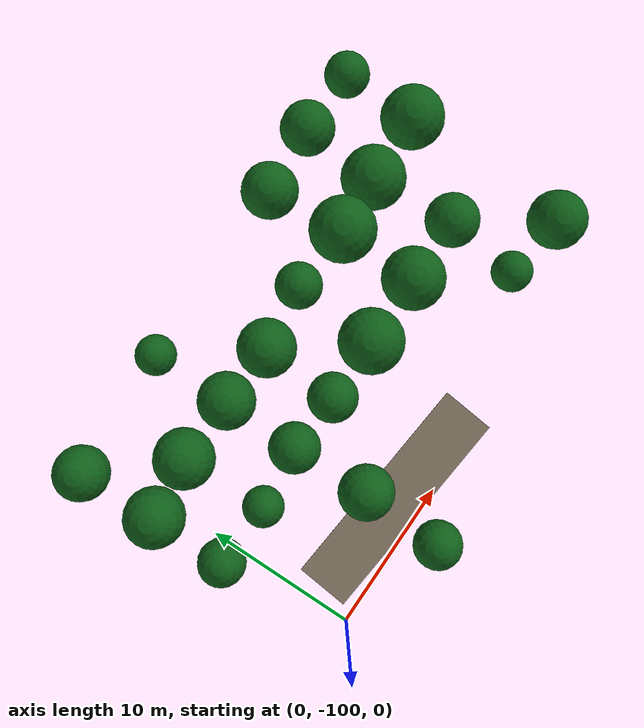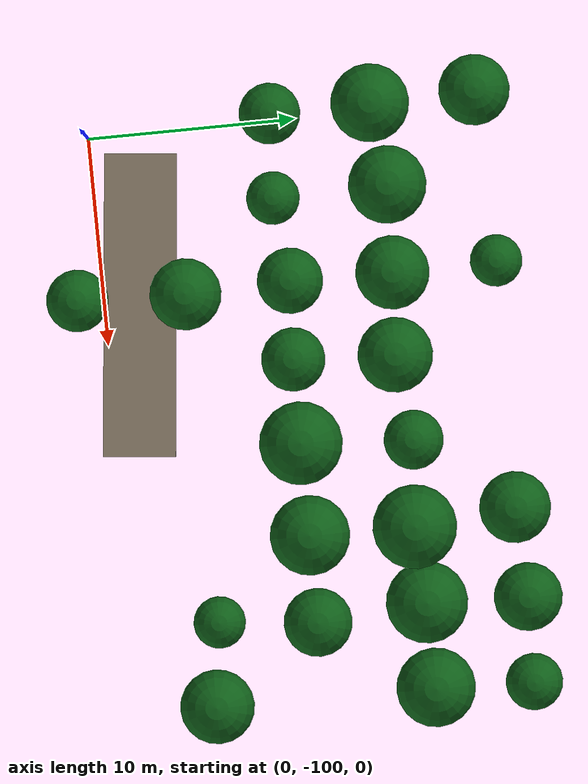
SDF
<sdf version="1.9">
 <world name="cheongsong_orchard">
  <model name="road_4">
   <static>true</static>
   <pose>8.2 -98.3 0.02 0 0 -0.1019</pose>
   <link name="link">
    <collision name="collision">
     <geometry><box><size>14.6 3.5 0.04</size></box></geometry>
     <surface><friction><ode><mu>0.9</mu><mu2>0.9</mu2></ode></friction></surface>
    </collision>
    <visual name="visual">
     <geometry><box><size>14.6 3.5 0.04</size></box></geometry>
     <material><ambient>0.4 0.35 0.28 1</ambient><diffuse>0.5 0.45 0.38 1</diffuse></material>
    </visual>
   </link>
  </model>
  <model name="apple_tree_185">
   <static>true</static>
   <pose>7.79 -101.11 0 0 0 0</pose>
   <link name="link">
    <collision name="trunk_col">
     <pose>0 0 1.36 0 0 0</pose>
     <geometry><cylinder><radius>0.121</radius><length>2.73</length></cylinder></geometry>
    </collision>
    <visual name="trunk_vis">
     <pose>0 0 1.36 0 0 0</pose>
     <geometry><cylinder><radius>0.121</radius><length>2.73</length></cylinder></geometry>
     <material><ambient>0.35 0.22 0.08 1</ambient><diffuse>0.45 0.30 0.12 1</diffuse></material>
    </visual>
    <collision name="canopy_col">
     <pose>0 0 4.21 0 0 0</pose>
     <geometry><sphere><radius>1.48</radius></sphere></geometry>
    </collision>
    <visual name="canopy_vis">
     <pose>0 0 4.21 0 0 0</pose>
     <geometry><sphere><radius>1.48</radius></sphere></geometry>
     <material><ambient>0.04 0.28 0.06 1</ambient><diffuse>0.06 0.38 0.10 1</diffuse></material>
    </visual>
   </link>
  </model>
  <model name="apple_tree_236">
   <static>true</static>
   <pose>7.97 -96.00 0 0 0 0</pose>
   <link name="link">
    <collision name="trunk_col">
     <pose>0 0 1.01 0 0 0</pose>
     <geometry><cylinder><radius>0.148</radius><length>2.02</length></cylinder></geometry>
    </collision>
    <visual name="trunk_vis">
     <pose>0 0 1.01 0 0 0</pose>
     <geometry><cylinder><radius>0.148</radius><length>2.02</length></cylinder></geometry>
     <material><ambient>0.35 0.22 0.08 1</ambient><diffuse>0.45 0.30 0.12 1</diffuse></material>
    </visual>
    <collision name="canopy_col">
     <pose>0 0 3.74 0 0 0</pose>
     <geometry><sphere><radius>1.71</radius></sphere></geometry>
    </collision>
    <visual name="canopy_vis">
     <pose>0 0 3.74 0 0 0</pose>
     <geometry><sphere><radius>1.71</radius></sphere></geometry>
     <material><ambient>0.04 0.28 0.06 1</ambient><diffuse>0.06 0.38 0.10 1</diffuse></material>
    </visual>
   </link>
  </model>
  <model name="apple_tree_237">
   <static>true</static>
   <pose>23.62 -95.91 0 0 0 0</pose>
   <link name="link">
    <collision name="trunk_col">
     <pose>0 0 1.19 0 0 0</pose>
     <geometry><cylinder><radius>0.144</radius><length>2.37</length></cylinder></geometry>
    </collision>
    <visual name="trunk_vis">
     <pose>0 0 1.19 0 0 0</pose>
     <geometry><cylinder><radius>0.144</radius><length>2.37</length></cylinder></geometry>
     <material><ambient>0.35 0.22 0.08 1</ambient><diffuse>0.45 0.30 0.12 1</diffuse></material>
    </visual>
    <collision name="canopy_col">
     <pose>0 0 3.62 0 0 0</pose>
     <geometry><sphere><radius>1.24</radius></sphere></geometry>
    </collision>
    <visual name="canopy_vis">
     <pose>0 0 3.62 0 0 0</pose>
     <geometry><sphere><radius>1.24</radius></sphere></geometry>
     <material><ambient>0.04 0.28 0.06 1</ambient><diffuse>0.06 0.38 0.10 1</diffuse></material>
    </visual>
   </link>
  </model>
  <model name="apple_tree_238">
   <static>true</static>
   <pose>27.58 -96.40 0 0 0 0</pose>
   <link name="link">
    <collision name="trunk_col">
     <pose>0 0 1.06 0 0 0</pose>
     <geometry><cylinder><radius>0.103</radius><length>2.11</length></cylinder></geometry>
    </collision>
    <visual name="trunk_vis">
     <pose>0 0 1.06 0 0 0</pose>
     <geometry><cylinder><radius>0.103</radius><length>2.11</length></cylinder></geometry>
     <material><ambient>0.35 0.22 0.08 1</ambient><diffuse>0.45 0.30 0.12 1</diffuse></material>
    </visual>
    <collision name="canopy_col">
     <pose>0 0 3.88 0 0 0</pose>
     <geometry><sphere><radius>1.77</radius></sphere></geometry>
    </collision>
    <visual name="canopy_vis">
     <pose>0 0 3.88 0 0 0</pose>
     <geometry><sphere><radius>1.77</radius></sphere></geometry>
     <material><ambient>0.04 0.28 0.06 1</ambient><diffuse>0.06 0.38 0.10 1</diffuse></material>
    </visual>
   </link>
  </model>
  <model name="apple_tree_287">
   <static>true</static>
   <pose>-0.16 -91.19 0 0 0 0</pose>
   <link name="link">
    <collision name="trunk_col">
     <pose>0 0 1.25 0 0 0</pose>
     <geometry><cylinder><radius>0.090</radius><length>2.51</length></cylinder></geometry>
    </collision>
    <visual name="trunk_vis">
     <pose>0 0 1.25 0 0 0</pose>
     <geometry><cylinder><radius>0.090</radius><length>2.51</length></cylinder></geometry>
     <material><ambient>0.35 0.22 0.08 1</ambient><diffuse>0.45 0.30 0.12 1</diffuse></material>
    </visual>
    <collision name="canopy_col">
     <pose>0 0 3.97 0 0 0</pose>
     <geometry><sphere><radius>1.46</radius></sphere></geometry>
    </collision>
    <visual name="canopy_vis">
     <pose>0 0 3.97 0 0 0</pose>
     <geometry><sphere><radius>1.46</radius></sphere></geometry>
     <material><ambient>0.04 0.28 0.06 1</ambient><diffuse>0.06 0.38 0.10 1</diffuse></material>
    </visual>
   </link>
  </model>
  <model name="apple_tree_288">
   <static>true</static>
   <pose>3.82 -91.42 0 0 0 0</pose>
   <link name="link">
    <collision name="trunk_col">
     <pose>0 0 1.08 0 0 0</pose>
     <geometry><cylinder><radius>0.121</radius><length>2.15</length></cylinder></geometry>
    </collision>
    <visual name="trunk_vis">
     <pose>0 0 1.08 0 0 0</pose>
     <geometry><cylinder><radius>0.121</radius><length>2.15</length></cylinder></geometry>
     <material><ambient>0.35 0.22 0.08 1</ambient><diffuse>0.45 0.30 0.12 1</diffuse></material>
    </visual>
    <collision name="canopy_col">
     <pose>0 0 3.42 0 0 0</pose>
     <geometry><sphere><radius>1.27</radius></sphere></geometry>
    </collision>
    <visual name="canopy_vis">
     <pose>0 0 3.42 0 0 0</pose>
     <geometry><sphere><radius>1.27</radius></sphere></geometry>
     <material><ambient>0.04 0.28 0.06 1</ambient><diffuse>0.06 0.38 0.10 1</diffuse></material>
    </visual>
   </link>
  </model>
  <model name="apple_tree_289">
   <static>true</static>
   <pose>7.82 -91.00 0 0 0 0</pose>
   <link name="link">
    <collision name="trunk_col">
     <pose>0 0 1.20 0 0 0</pose>
     <geometry><cylinder><radius>0.116</radius><length>2.39</length></cylinder></geometry>
    </collision>
    <visual name="trunk_vis">
     <pose>0 0 1.20 0 0 0</pose>
     <geometry><cylinder><radius>0.116</radius><length>2.39</length></cylinder></geometry>
     <material><ambient>0.35 0.22 0.08 1</ambient><diffuse>0.45 0.30 0.12 1</diffuse></material>
    </visual>
    <collision name="canopy_col">
     <pose>0 0 3.96 0 0 0</pose>
     <geometry><sphere><radius>1.57</radius></sphere></geometry>
    </collision>
    <visual name="canopy_vis">
     <pose>0 0 3.96 0 0 0</pose>
     <geometry><sphere><radius>1.57</radius></sphere></geometry>
     <material><ambient>0.04 0.28 0.06 1</ambient><diffuse>0.06 0.38 0.10 1</diffuse></material>
    </visual>
   </link>
  </model>
  <model name="apple_tree_290">
   <static>true</static>
   <pose>11.55 -91.21 0 0 0 0</pose>
   <link name="link">
    <collision name="trunk_col">
     <pose>0 0 1.37 0 0 0</pose>
     <geometry><cylinder><radius>0.131</radius><length>2.74</length></cylinder></geometry>
    </collision>
    <visual name="trunk_vis">
     <pose>0 0 1.37 0 0 0</pose>
     <geometry><cylinder><radius>0.131</radius><length>2.74</length></cylinder></geometry>
     <material><ambient>0.35 0.22 0.08 1</ambient><diffuse>0.45 0.30 0.12 1</diffuse></material>
    </visual>
    <collision name="canopy_col">
     <pose>0 0 4.25 0 0 0</pose>
     <geometry><sphere><radius>1.52</radius></sphere></geometry>
    </collision>
    <visual name="canopy_vis">
     <pose>0 0 4.25 0 0 0</pose>
     <geometry><sphere><radius>1.52</radius></sphere></geometry>
     <material><ambient>0.04 0.28 0.06 1</ambient><diffuse>0.06 0.38 0.10 1</diffuse></material>
    </visual>
   </link>
  </model>
  <model name="apple_tree_291">
   <static>true</static>
   <pose>15.53 -91.24 0 0 0 0</pose>
   <link name="link">
    <collision name="trunk_col">
     <pose>0 0 1.35 0 0 0</pose>
     <geometry><cylinder><radius>0.134</radius><length>2.70</length></cylinder></geometry>
    </collision>
    <visual name="trunk_vis">
     <pose>0 0 1.35 0 0 0</pose>
     <geometry><cylinder><radius>0.134</radius><length>2.70</length></cylinder></geometry>
     <material><ambient>0.35 0.22 0.08 1</ambient><diffuse>0.45 0.30 0.12 1</diffuse></material>
    </visual>
    <collision name="canopy_col">
     <pose>0 0 4.68 0 0 0</pose>
     <geometry><sphere><radius>1.98</radius></sphere></geometry>
    </collision>
    <visual name="canopy_vis">
     <pose>0 0 4.68 0 0 0</pose>
     <geometry><sphere><radius>1.98</radius></sphere></geometry>
     <material><ambient>0.04 0.28 0.06 1</ambient><diffuse>0.06 0.38 0.10 1</diffuse></material>
    </visual>
   </link>
  </model>
  <model name="apple_tree_292">
   <static>true</static>
   <pose>19.90 -91.24 0 0 0 0</pose>
   <link name="link">
    <collision name="trunk_col">
     <pose>0 0 1.46 0 0 0</pose>
     <geometry><cylinder><radius>0.107</radius><length>2.92</length></cylinder></geometry>
    </collision>
    <visual name="trunk_vis">
     <pose>0 0 1.46 0 0 0</pose>
     <geometry><cylinder><radius>0.107</radius><length>2.92</length></cylinder></geometry>
     <material><ambient>0.35 0.22 0.08 1</ambient><diffuse>0.45 0.30 0.12 1</diffuse></material>
    </visual>
    <collision name="canopy_col">
     <pose>0 0 4.81 0 0 0</pose>
     <geometry><sphere><radius>1.90</radius></sphere></geometry>
    </collision>
    <visual name="canopy_vis">
     <pose>0 0 4.81 0 0 0</pose>
     <geometry><sphere><radius>1.90</radius></sphere></geometry>
     <material><ambient>0.04 0.28 0.06 1</ambient><diffuse>0.06 0.38 0.10 1</diffuse></material>
    </visual>
   </link>
  </model>
  <model name="apple_tree_293">
   <static>true</static>
   <pose>24.05 -91.26 0 0 0 0</pose>
   <link name="link">
    <collision name="trunk_col">
     <pose>0 0 1.31 0 0 0</pose>
     <geometry><cylinder><radius>0.126</radius><length>2.62</length></cylinder></geometry>
    </collision>
    <visual name="trunk_vis">
     <pose>0 0 1.31 0 0 0</pose>
     <geometry><cylinder><radius>0.126</radius><length>2.62</length></cylinder></geometry>
     <material><ambient>0.35 0.22 0.08 1</ambient><diffuse>0.45 0.30 0.12 1</diffuse></material>
    </visual>
    <collision name="canopy_col">
     <pose>0 0 4.25 0 0 0</pose>
     <geometry><sphere><radius>1.63</radius></sphere></geometry>
    </collision>
    <visual name="canopy_vis">
     <pose>0 0 4.25 0 0 0</pose>
     <geometry><sphere><radius>1.63</radius></sphere></geometry>
     <material><ambient>0.04 0.28 0.06 1</ambient><diffuse>0.06 0.38 0.10 1</diffuse></material>
    </visual>
   </link>
  </model>
  <model name="apple_tree_342">
   <static>true</static>
   <pose>-0.21 -86.41 0 0 0 0</pose>
   <link name="link">
    <collision name="trunk_col">
     <pose>0 0 0.98 0 0 0</pose>
     <geometry><cylinder><radius>0.108</radius><length>1.96</length></cylinder></geometry>
    </collision>
    <visual name="trunk_vis">
     <pose>0 0 0.98 0 0 0</pose>
     <geometry><cylinder><radius>0.108</radius><length>1.96</length></cylinder></geometry>
     <material><ambient>0.35 0.22 0.08 1</ambient><diffuse>0.45 0.30 0.12 1</diffuse></material>
    </visual>
    <collision name="canopy_col">
     <pose>0 0 3.83 0 0 0</pose>
     <geometry><sphere><radius>1.87</radius></sphere></geometry>
    </collision>
    <visual name="canopy_vis">
     <pose>0 0 3.83 0 0 0</pose>
     <geometry><sphere><radius>1.87</radius></sphere></geometry>
     <material><ambient>0.04 0.28 0.06 1</ambient><diffuse>0.06 0.38 0.10 1</diffuse></material>
    </visual>
   </link>
  </model>
  <model name="apple_tree_343">
   <static>true</static>
   <pose>3.74 -85.97 0 0 0 0</pose>
   <link name="link">
    <collision name="trunk_col">
     <pose>0 0 1.19 0 0 0</pose>
     <geometry><cylinder><radius>0.110</radius><length>2.38</length></cylinder></geometry>
    </collision>
    <visual name="trunk_vis">
     <pose>0 0 1.19 0 0 0</pose>
     <geometry><cylinder><radius>0.110</radius><length>2.38</length></cylinder></geometry>
     <material><ambient>0.35 0.22 0.08 1</ambient><diffuse>0.45 0.30 0.12 1</diffuse></material>
    </visual>
    <collision name="canopy_col">
     <pose>0 0 4.24 0 0 0</pose>
     <geometry><sphere><radius>1.86</radius></sphere></geometry>
    </collision>
    <visual name="canopy_vis">
     <pose>0 0 4.24 0 0 0</pose>
     <geometry><sphere><radius>1.86</radius></sphere></geometry>
     <material><ambient>0.04 0.28 0.06 1</ambient><diffuse>0.06 0.38 0.10 1</diffuse></material>
    </visual>
   </link>
  </model>
  <model name="apple_tree_344">
   <static>true</static>
   <pose>7.90 -86.13 0 0 0 0</pose>
   <link name="link">
    <collision name="trunk_col">
     <pose>0 0 1.12 0 0 0</pose>
     <geometry><cylinder><radius>0.122</radius><length>2.24</length></cylinder></geometry>
    </collision>
    <visual name="trunk_vis">
     <pose>0 0 1.12 0 0 0</pose>
     <geometry><cylinder><radius>0.122</radius><length>2.24</length></cylinder></geometry>
     <material><ambient>0.35 0.22 0.08 1</ambient><diffuse>0.45 0.30 0.12 1</diffuse></material>
    </visual>
    <collision name="canopy_col">
     <pose>0 0 4.00 0 0 0</pose>
     <geometry><sphere><radius>1.76</radius></sphere></geometry>
    </collision>
    <visual name="canopy_vis">
     <pose>0 0 4.00 0 0 0</pose>
     <geometry><sphere><radius>1.76</radius></sphere></geometry>
     <material><ambient>0.04 0.28 0.06 1</ambient><diffuse>0.06 0.38 0.10 1</diffuse></material>
    </visual>
   </link>
  </model>
  <model name="apple_tree_345">
   <static>true</static>
   <pose>11.80 -86.38 0 0 0 0</pose>
   <link name="link">
    <collision name="trunk_col">
     <pose>0 0 1.17 0 0 0</pose>
     <geometry><cylinder><radius>0.102</radius><length>2.34</length></cylinder></geometry>
    </collision>
    <visual name="trunk_vis">
     <pose>0 0 1.17 0 0 0</pose>
     <geometry><cylinder><radius>0.102</radius><length>2.34</length></cylinder></geometry>
     <material><ambient>0.35 0.22 0.08 1</ambient><diffuse>0.45 0.30 0.12 1</diffuse></material>
    </visual>
    <collision name="canopy_col">
     <pose>0 0 4.13 0 0 0</pose>
     <geometry><sphere><radius>1.79</radius></sphere></geometry>
    </collision>
    <visual name="canopy_vis">
     <pose>0 0 4.13 0 0 0</pose>
     <geometry><sphere><radius>1.79</radius></sphere></geometry>
     <material><ambient>0.04 0.28 0.06 1</ambient><diffuse>0.06 0.38 0.10 1</diffuse></material>
    </visual>
   </link>
  </model>
  <model name="apple_tree_346">
   <static>true</static>
   <pose>15.89 -85.91 0 0 0 0</pose>
   <link name="link">
    <collision name="trunk_col">
     <pose>0 0 1.36 0 0 0</pose>
     <geometry><cylinder><radius>0.103</radius><length>2.71</length></cylinder></geometry>
    </collision>
    <visual name="trunk_vis">
     <pose>0 0 1.36 0 0 0</pose>
     <geometry><cylinder><radius>0.103</radius><length>2.71</length></cylinder></geometry>
     <material><ambient>0.35 0.22 0.08 1</ambient><diffuse>0.45 0.30 0.12 1</diffuse></material>
    </visual>
    <collision name="canopy_col">
     <pose>0 0 4.14 0 0 0</pose>
     <geometry><sphere><radius>1.42</radius></sphere></geometry>
    </collision>
    <visual name="canopy_vis">
     <pose>0 0 4.14 0 0 0</pose>
     <geometry><sphere><radius>1.42</radius></sphere></geometry>
     <material><ambient>0.04 0.28 0.06 1</ambient><diffuse>0.06 0.38 0.10 1</diffuse></material>
    </visual>
   </link>
  </model>
  <model name="apple_tree_347">
   <static>true</static>
   <pose>19.98 -86.27 0 0 0 0</pose>
   <link name="link">
    <collision name="trunk_col">
     <pose>0 0 1.43 0 0 0</pose>
     <geometry><cylinder><radius>0.094</radius><length>2.86</length></cylinder></geometry>
    </collision>
    <visual name="trunk_vis">
     <pose>0 0 1.43 0 0 0</pose>
     <geometry><cylinder><radius>0.094</radius><length>2.86</length></cylinder></geometry>
     <material><ambient>0.35 0.22 0.08 1</ambient><diffuse>0.45 0.30 0.12 1</diffuse></material>
    </visual>
    <collision name="canopy_col">
     <pose>0 0 4.86 0 0 0</pose>
     <geometry><sphere><radius>2.00</radius></sphere></geometry>
    </collision>
    <visual name="canopy_vis">
     <pose>0 0 4.86 0 0 0</pose>
     <geometry><sphere><radius>2.00</radius></sphere></geometry>
     <material><ambient>0.04 0.28 0.06 1</ambient><diffuse>0.06 0.38 0.10 1</diffuse></material>
    </visual>
   </link>
  </model>
  <model name="apple_tree_348">
   <static>true</static>
   <pose>23.62 -86.03 0 0 0 0</pose>
   <link name="link">
    <collision name="trunk_col">
     <pose>0 0 0.99 0 0 0</pose>
     <geometry><cylinder><radius>0.131</radius><length>1.98</length></cylinder></geometry>
    </collision>
    <visual name="trunk_vis">
     <pose>0 0 0.99 0 0 0</pose>
     <geometry><cylinder><radius>0.131</radius><length>1.98</length></cylinder></geometry>
     <material><ambient>0.35 0.22 0.08 1</ambient><diffuse>0.45 0.30 0.12 1</diffuse></material>
    </visual>
    <collision name="canopy_col">
     <pose>0 0 3.93 0 0 0</pose>
     <geometry><sphere><radius>1.95</radius></sphere></geometry>
    </collision>
    <visual name="canopy_vis">
     <pose>0 0 3.93 0 0 0</pose>
     <geometry><sphere><radius>1.95</radius></sphere></geometry>
     <material><ambient>0.04 0.28 0.06 1</ambient><diffuse>0.06 0.38 0.10 1</diffuse></material>
    </visual>
   </link>
  </model>
  <model name="apple_tree_349">
   <static>true</static>
   <pose>27.64 -86.01 0 0 0 0</pose>
   <link name="link">
    <collision name="trunk_col">
     <pose>0 0 1.38 0 0 0</pose>
     <geometry><cylinder><radius>0.085</radius><length>2.76</length></cylinder></geometry>
    </collision>
    <visual name="trunk_vis">
     <pose>0 0 1.38 0 0 0</pose>
     <geometry><cylinder><radius>0.085</radius><length>2.76</length></cylinder></geometry>
     <material><ambient>0.35 0.22 0.08 1</ambient><diffuse>0.45 0.30 0.12 1</diffuse></material>
    </visual>
    <collision name="canopy_col">
     <pose>0 0 4.64 0 0 0</pose>
     <geometry><sphere><radius>1.88</radius></sphere></geometry>
    </collision>
    <visual name="canopy_vis">
     <pose>0 0 4.64 0 0 0</pose>
     <geometry><sphere><radius>1.88</radius></sphere></geometry>
     <material><ambient>0.04 0.28 0.06 1</ambient><diffuse>0.06 0.38 0.10 1</diffuse></material>
    </visual>
   </link>
  </model>
  <model name="apple_tree_398">
   <static>true</static>
   <pose>-0.32 -81.44 0 0 0 0</pose>
   <link name="link">
    <collision name="trunk_col">
     <pose>0 0 1.24 0 0 0</pose>
     <geometry><cylinder><radius>0.122</radius><length>2.49</length></cylinder></geometry>
    </collision>
    <visual name="trunk_vis">
     <pose>0 0 1.24 0 0 0</pose>
     <geometry><cylinder><radius>0.122</radius><length>2.49</length></cylinder></geometry>
     <material><ambient>0.35 0.22 0.08 1</ambient><diffuse>0.45 0.30 0.12 1</diffuse></material>
    </visual>
    <collision name="canopy_col">
     <pose>0 0 4.18 0 0 0</pose>
     <geometry><sphere><radius>1.69</radius></sphere></geometry>
    </collision>
    <visual name="canopy_vis">
     <pose>0 0 4.18 0 0 0</pose>
     <geometry><sphere><radius>1.69</radius></sphere></geometry>
     <material><ambient>0.04 0.28 0.06 1</ambient><diffuse>0.06 0.38 0.10 1</diffuse></material>
    </visual>
   </link>
  </model>
  <model name="apple_tree_400">
   <static>true</static>
   <pose>7.82 -81.18 0 0 0 0</pose>
   <link name="link">
    <collision name="trunk_col">
     <pose>0 0 1.34 0 0 0</pose>
     <geometry><cylinder><radius>0.101</radius><length>2.68</length></cylinder></geometry>
    </collision>
    <visual name="trunk_vis">
     <pose>0 0 1.34 0 0 0</pose>
     <geometry><cylinder><radius>0.101</radius><length>2.68</length></cylinder></geometry>
     <material><ambient>0.35 0.22 0.08 1</ambient><diffuse>0.45 0.30 0.12 1</diffuse></material>
    </visual>
    <collision name="canopy_col">
     <pose>0 0 3.92 0 0 0</pose>
     <geometry><sphere><radius>1.24</radius></sphere></geometry>
    </collision>
    <visual name="canopy_vis">
     <pose>0 0 3.92 0 0 0</pose>
     <geometry><sphere><radius>1.24</radius></sphere></geometry>
     <material><ambient>0.04 0.28 0.06 1</ambient><diffuse>0.06 0.38 0.10 1</diffuse></material>
    </visual>
   </link>
  </model>
  <model name="apple_tree_403">
   <static>true</static>
   <pose>19.53 -81.45 0 0 0 0</pose>
   <link name="link">
    <collision name="trunk_col">
     <pose>0 0 1.36 0 0 0</pose>
     <geometry><cylinder><radius>0.115</radius><length>2.72</length></cylinder></geometry>
    </collision>
    <visual name="trunk_vis">
     <pose>0 0 1.36 0 0 0</pose>
     <geometry><cylinder><radius>0.115</radius><length>2.72</length></cylinder></geometry>
     <material><ambient>0.35 0.22 0.08 1</ambient><diffuse>0.45 0.30 0.12 1</diffuse></material>
    </visual>
    <collision name="canopy_col">
     <pose>0 0 4.42 0 0 0</pose>
     <geometry><sphere><radius>1.70</radius></sphere></geometry>
    </collision>
    <visual name="canopy_vis">
     <pose>0 0 4.42 0 0 0</pose>
     <geometry><sphere><radius>1.70</radius></sphere></geometry>
     <material><ambient>0.04 0.28 0.06 1</ambient><diffuse>0.06 0.38 0.10 1</diffuse></material>
    </visual>
   </link>
  </model>
  <model name="apple_tree_404">
   <static>true</static>
   <pose>23.81 -81.24 0 0 0 0</pose>
   <link name="link">
    <collision name="trunk_col">
     <pose>0 0 1.32 0 0 0</pose>
     <geometry><cylinder><radius>0.086</radius><length>2.63</length></cylinder></geometry>
    </collision>
    <visual name="trunk_vis">
     <pose>0 0 1.32 0 0 0</pose>
     <geometry><cylinder><radius>0.086</radius><length>2.63</length></cylinder></geometry>
     <material><ambient>0.35 0.22 0.08 1</ambient><diffuse>0.45 0.30 0.12 1</diffuse></material>
    </visual>
    <collision name="canopy_col">
     <pose>0 0 4.26 0 0 0</pose>
     <geometry><sphere><radius>1.63</radius></sphere></geometry>
    </collision>
    <visual name="canopy_vis">
     <pose>0 0 4.26 0 0 0</pose>
     <geometry><sphere><radius>1.63</radius></sphere></geometry>
     <material><ambient>0.04 0.28 0.06 1</ambient><diffuse>0.06 0.38 0.10 1</diffuse></material>
    </visual>
   </link>
  </model>
  <model name="apple_tree_405">
   <static>true</static>
   <pose>27.88 -81.32 0 0 0 0</pose>
   <link name="link">
    <collision name="trunk_col">
     <pose>0 0 1.13 0 0 0</pose>
     <geometry><cylinder><radius>0.116</radius><length>2.25</length></cylinder></geometry>
    </collision>
    <visual name="trunk_vis">
     <pose>0 0 1.13 0 0 0</pose>
     <geometry><cylinder><radius>0.116</radius><length>2.25</length></cylinder></geometry>
     <material><ambient>0.35 0.22 0.08 1</ambient><diffuse>0.45 0.30 0.12 1</diffuse></material>
    </visual>
    <collision name="canopy_col">
     <pose>0 0 3.61 0 0 0</pose>
     <geometry><sphere><radius>1.36</radius></sphere></geometry>
    </collision>
    <visual name="canopy_vis">
     <pose>0 0 3.61 0 0 0</pose>
     <geometry><sphere><radius>1.36</radius></sphere></geometry>
     <material><ambient>0.04 0.28 0.06 1</ambient><diffuse>0.06 0.38 0.10 1</diffuse></material>
    </visual>
   </link>
  </model>
  <model name="apple_290_0">
   <static>true</static>
   <pose>11.52 -92.04 2.18 0 0 0</pose>
   <link name="link">
    <visual name="visual">
     <geometry><sphere><radius>0.04</radius></sphere></geometry>
     <material><ambient>0.7 0.05 0.02 1</ambient><diffuse>0.9 0.10 0.05 1</diffuse></material>
    </visual>
   </link>
  </model>
  <model name="apple_290_1">
   <static>true</static>
   <pose>11.34 -90.92 3.19 0 0 0</pose>
   <link name="link">
    <visual name="visual">
     <geometry><sphere><radius>0.04</radius></sphere></geometry>
     <material><ambient>0.7 0.05 0.02 1</ambient><diffuse>0.9 0.10 0.05 1</diffuse></material>
    </visual>
   </link>
  </model>
  <model name="apple_290_2">
   <static>true</static>
   <pose>11.88 -91.36 3.12 0 0 0</pose>
   <link name="link">
    <visual name="visual">
     <geometry><sphere><radius>0.04</radius></sphere></geometry>
     <material><ambient>0.7 0.05 0.02 1</ambient><diffuse>0.9 0.10 0.05 1</diffuse></material>
    </visual>
   </link>
  </model>
  <model name="apple_400_1">
   <static>true</static>
   <pose>7.27 -81.56 3.03 0 0 0</pose>
   <link name="link">
    <visual name="visual">
     <geometry><sphere><radius>0.04</radius></sphere></geometry>
     <material><ambient>0.7 0.05 0.02 1</ambient><diffuse>0.9 0.10 0.05 1</diffuse></material>
    </visual>
   </link>
  </model>
  <model name="apple_400_2">
   <static>true</static>
   <pose>8.77 -81.26 2.30 0 0 0</pose>
   <link name="link">
    <visual name="visual">
     <geometry><sphere><radius>0.04</radius></sphere></geometry>
     <material><ambient>0.7 0.05 0.02 1</ambient><diffuse>0.9 0.10 0.05 1</diffuse></material>
    </visual>
   </link>
  </model>
 </world>
</sdf>
